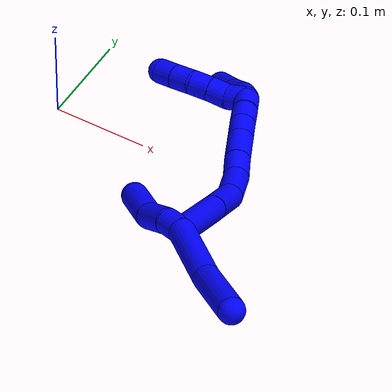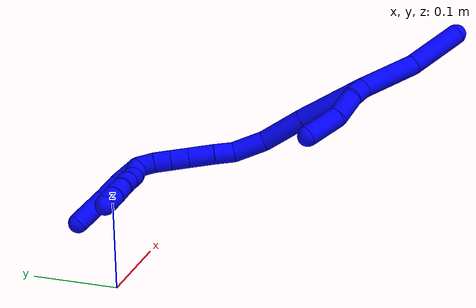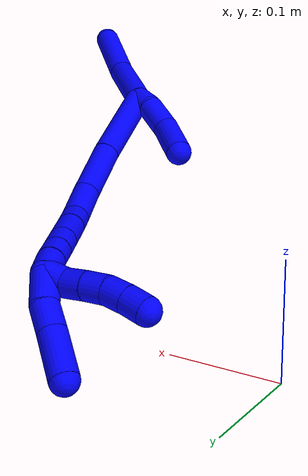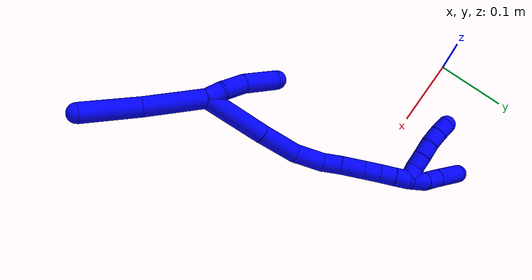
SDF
<sdf version="1.7">
 <world name="default">
  <model name="1">
   <static>0</static>
   <link name="1">
    <collision name="collision-cylinder-e_1_2_8">
     <pose>0.005627 0.000156 0.038166 -0.004094 0.146383 -0.0003</pose>
     <geometry><cylinder><radius>0.0125</radius><length>0.077158</length></cylinder></geometry>
     <surface>
      <friction><ode><mu>1.16</mu><mu2>1.16</mu2><slip1>0</slip1><slip2>0</slip2></ode></friction>
      <contact><ode><kp>1e+06</kp><kd>1</kd><max_vel>0</max_vel><min_depth>0.001</min_depth></ode></contact>
     </surface>
    </collision>
    <visual name="visual-cylinder-e_1_2_8">
     <pose>0.005627 0.000156 0.038166 -0.004094 0.146383 -0.0003</pose>
     <geometry><cylinder><radius>0.0125</radius><length>0.077158</length></cylinder></geometry>
     <material><ambient>0 0 1 1</ambient></material>
    </visual>
    <collision name="collision-cylinder-e_2_8_6">
     <pose>0.009991 0.000725 0.112729 -0.011325 -0.034686 0.000196</pose>
     <geometry><cylinder><radius>0.0125</radius><length>0.072842</length></cylinder></geometry>
     <surface>
      <friction><ode><mu>1.16</mu><mu2>1.16</mu2><slip1>0</slip1><slip2>0</slip2></ode></friction>
      <contact><ode><kp>1e+06</kp><kd>1</kd><max_vel>0</max_vel><min_depth>0.001</min_depth></ode></contact>
     </surface>
    </collision>
    <visual name="visual-cylinder-e_2_8_6">
     <pose>0.009991 0.000725 0.112729 -0.011325 -0.034686 0.000196</pose>
     <geometry><cylinder><radius>0.0125</radius><length>0.072842</length></cylinder></geometry>
     <material><ambient>0 0 1 1</ambient></material>
    </visual>
    <collision name="collision-cylinder-e_1_2_9">
     <pose>-0.000781 -0.00358 -0.010108 2.80125 -0.072737 -0.41732</pose>
     <geometry><cylinder><radius>0.0125</radius><length>0.021504</length></cylinder></geometry>
     <surface>
      <friction><ode><mu>1.16</mu><mu2>1.16</mu2><slip1>0</slip1><slip2>0</slip2></ode></friction>
      <contact><ode><kp>1e+06</kp><kd>1</kd><max_vel>0</max_vel><min_depth>0.001</min_depth></ode></contact>
     </surface>
    </collision>
    <visual name="visual-cylinder-e_1_2_9">
     <pose>-0.000781 -0.00358 -0.010108 2.80125 -0.072737 -0.41732</pose>
     <geometry><cylinder><radius>0.0125</radius><length>0.021504</length></cylinder></geometry>
     <material><ambient>0 0 1 1</ambient></material>
    </visual>
    <collision name="collision-cylinder-e_2_9_10">
     <pose>0.001791 -0.011644 -0.035905 2.86312 0.202725 1.25563</pose>
     <geometry><cylinder><radius>0.0125</radius><length>0.033315</length></cylinder></geometry>
     <surface>
      <friction><ode><mu>1.16</mu><mu2>1.16</mu2><slip1>0</slip1><slip2>0</slip2></ode></friction>
      <contact><ode><kp>1e+06</kp><kd>1</kd><max_vel>0</max_vel><min_depth>0.001</min_depth></ode></contact>
     </surface>
    </collision>
    <visual name="visual-cylinder-e_2_9_10">
     <pose>0.001791 -0.011644 -0.035905 2.86312 0.202725 1.25563</pose>
     <geometry><cylinder><radius>0.0125</radius><length>0.033315</length></cylinder></geometry>
     <material><ambient>0 0 1 1</ambient></material>
    </visual>
    <collision name="collision-cylinder-e_3_10_5">
     <pose>0.004799 -0.016719 -0.074173 3.1155 -0.015329 -1.06217</pose>
     <geometry><cylinder><radius>0.0125</radius><length>0.045181</length></cylinder></geometry>
     <surface>
      <friction><ode><mu>1.16</mu><mu2>1.16</mu2><slip1>0</slip1><slip2>0</slip2></ode></friction>
      <contact><ode><kp>1e+06</kp><kd>1</kd><max_vel>0</max_vel><min_depth>0.001</min_depth></ode></contact>
     </surface>
    </collision>
    <visual name="visual-cylinder-e_3_10_5">
     <pose>0.004799 -0.016719 -0.074173 3.1155 -0.015329 -1.06217</pose>
     <geometry><cylinder><radius>0.0125</radius><length>0.045181</length></cylinder></geometry>
     <material><ambient>0 0 1 1</ambient></material>
    </visual>
    <collision name="collision-cylinder-e_1_2_11">
     <pose>0.008466 0.024117 -0.033614 -2.51924 0.201858 -0.610099</pose>
     <geometry><cylinder><radius>0.0125</radius><length>0.084456</length></cylinder></geometry>
     <surface>
      <friction><ode><mu>1.16</mu><mu2>1.16</mu2><slip1>0</slip1><slip2>0</slip2></ode></friction>
      <contact><ode><kp>1e+06</kp><kd>1</kd><max_vel>0</max_vel><min_depth>0.001</min_depth></ode></contact>
     </surface>
    </collision>
    <visual name="visual-cylinder-e_1_2_11">
     <pose>0.008466 0.024117 -0.033614 -2.51924 0.201858 -0.610099</pose>
     <geometry><cylinder><radius>0.0125</radius><length>0.084456</length></cylinder></geometry>
     <material><ambient>0 0 1 1</ambient></material>
    </visual>
    <collision name="collision-cylinder-e_2_11_12">
     <pose>0.023219 0.062737 -0.089914 -2.5728 0.229369 -0.750735</pose>
     <geometry><cylinder><radius>0.0125</radius><length>0.055299</length></cylinder></geometry>
     <surface>
      <friction><ode><mu>1.16</mu><mu2>1.16</mu2><slip1>0</slip1><slip2>0</slip2></ode></friction>
      <contact><ode><kp>1e+06</kp><kd>1</kd><max_vel>0</max_vel><min_depth>0.001</min_depth></ode></contact>
     </surface>
    </collision>
    <visual name="visual-cylinder-e_2_11_12">
     <pose>0.023219 0.062737 -0.089914 -2.5728 0.229369 -0.750735</pose>
     <geometry><cylinder><radius>0.0125</radius><length>0.055299</length></cylinder></geometry>
     <material><ambient>0 0 1 1</ambient></material>
    </visual>
    <collision name="collision-cylinder-e_3_12_13">
     <pose>0.029177 0.085953 -0.130864 -2.69642 -0.016238 0.071714</pose>
     <geometry><cylinder><radius>0.0125</radius><length>0.040478</length></cylinder></geometry>
     <surface>
      <friction><ode><mu>1.16</mu><mu2>1.16</mu2><slip1>0</slip1><slip2>0</slip2></ode></friction>
      <contact><ode><kp>1e+06</kp><kd>1</kd><max_vel>0</max_vel><min_depth>0.001</min_depth></ode></contact>
     </surface>
    </collision>
    <visual name="visual-cylinder-e_3_12_13">
     <pose>0.029177 0.085953 -0.130864 -2.69642 -0.016238 0.071714</pose>
     <geometry><cylinder><radius>0.0125</radius><length>0.040478</length></cylinder></geometry>
     <material><ambient>0 0 1 1</ambient></material>
    </visual>
    <collision name="collision-cylinder-e_4_13_14">
     <pose>0.024793 0.098941 -0.160285 -2.77576 -0.327204 1.45717</pose>
     <geometry><cylinder><radius>0.0125</radius><length>0.025233</length></cylinder></geometry>
     <surface>
      <friction><ode><mu>1.16</mu><mu2>1.16</mu2><slip1>0</slip1><slip2>0</slip2></ode></friction>
      <contact><ode><kp>1e+06</kp><kd>1</kd><max_vel>0</max_vel><min_depth>0.001</min_depth></ode></contact>
     </surface>
    </collision>
    <visual name="visual-cylinder-e_4_13_14">
     <pose>0.024793 0.098941 -0.160285 -2.77576 -0.327204 1.45717</pose>
     <geometry><cylinder><radius>0.0125</radius><length>0.025233</length></cylinder></geometry>
     <material><ambient>0 0 1 1</ambient></material>
    </visual>
    <collision name="collision-cylinder-e_5_14_15">
     <pose>0.016494 0.109165 -0.185287 -2.73567 -0.27454 1.18234</pose>
     <geometry><cylinder><radius>0.0125</radius><length>0.031312</length></cylinder></geometry>
     <surface>
      <friction><ode><mu>1.16</mu><mu2>1.16</mu2><slip1>0</slip1><slip2>0</slip2></ode></friction>
      <contact><ode><kp>1e+06</kp><kd>1</kd><max_vel>0</max_vel><min_depth>0.001</min_depth></ode></contact>
     </surface>
    </collision>
    <visual name="visual-cylinder-e_5_14_15">
     <pose>0.016494 0.109165 -0.185287 -2.73567 -0.27454 1.18234</pose>
     <geometry><cylinder><radius>0.0125</radius><length>0.031312</length></cylinder></geometry>
     <material><ambient>0 0 1 1</ambient></material>
    </visual>
    <collision name="collision-cylinder-e_6_15_16">
     <pose>0.009249 0.119302 -0.208884 -2.73613 -0.275505 1.1867</pose>
     <geometry><cylinder><radius>0.0125</radius><length>0.022058</length></cylinder></geometry>
     <surface>
      <friction><ode><mu>1.16</mu><mu2>1.16</mu2><slip1>0</slip1><slip2>0</slip2></ode></friction>
      <contact><ode><kp>1e+06</kp><kd>1</kd><max_vel>0</max_vel><min_depth>0.001</min_depth></ode></contact>
     </surface>
    </collision>
    <visual name="visual-cylinder-e_6_15_16">
     <pose>0.009249 0.119302 -0.208884 -2.73613 -0.275505 1.1867</pose>
     <geometry><cylinder><radius>0.0125</radius><length>0.022058</length></cylinder></geometry>
     <material><ambient>0 0 1 1</ambient></material>
    </visual>
    <collision name="collision-cylinder-e_7_16_17">
     <pose>0.003598 0.12755 -0.227621 -2.71705 -0.262666 1.0997</pose>
     <geometry><cylinder><radius>0.0125</radius><length>0.020421</length></cylinder></geometry>
     <surface>
      <friction><ode><mu>1.16</mu><mu2>1.16</mu2><slip1>0</slip1><slip2>0</slip2></ode></friction>
      <contact><ode><kp>1e+06</kp><kd>1</kd><max_vel>0</max_vel><min_depth>0.001</min_depth></ode></contact>
     </surface>
    </collision>
    <visual name="visual-cylinder-e_7_16_17">
     <pose>0.003598 0.12755 -0.227621 -2.71705 -0.262666 1.0997</pose>
     <geometry><cylinder><radius>0.0125</radius><length>0.020421</length></cylinder></geometry>
     <material><ambient>0 0 1 1</ambient></material>
    </visual>
    <collision name="collision-cylinder-e_8_17_1">
     <pose>-0.000656 0.135447 -0.246108 -2.75789 -0.155151 0.761321</pose>
     <geometry><cylinder><radius>0.0125</radius><length>0.020743</length></cylinder></geometry>
     <surface>
      <friction><ode><mu>1.16</mu><mu2>1.16</mu2><slip1>0</slip1><slip2>0</slip2></ode></friction>
      <contact><ode><kp>1e+06</kp><kd>1</kd><max_vel>0</max_vel><min_depth>0.001</min_depth></ode></contact>
     </surface>
    </collision>
    <visual name="visual-cylinder-e_8_17_1">
     <pose>-0.000656 0.135447 -0.246108 -2.75789 -0.155151 0.761321</pose>
     <geometry><cylinder><radius>0.0125</radius><length>0.020743</length></cylinder></geometry>
     <material><ambient>0 0 1 1</ambient></material>
    </visual>
    <collision name="collision-cylinder-e_1_1_18">
     <pose>0.00142 0.141969 -0.270213 -2.95974 0.242848 -1.85817</pose>
     <geometry><cylinder><radius>0.0125</radius><length>0.030594</length></cylinder></geometry>
     <surface>
      <friction><ode><mu>1.16</mu><mu2>1.16</mu2><slip1>0</slip1><slip2>0</slip2></ode></friction>
      <contact><ode><kp>1e+06</kp><kd>1</kd><max_vel>0</max_vel><min_depth>0.001</min_depth></ode></contact>
     </surface>
    </collision>
    <visual name="visual-cylinder-e_1_1_18">
     <pose>0.00142 0.141969 -0.270213 -2.95974 0.242848 -1.85817</pose>
     <geometry><cylinder><radius>0.0125</radius><length>0.030594</length></cylinder></geometry>
     <material><ambient>0 0 1 1</ambient></material>
    </visual>
    <collision name="collision-cylinder-e_2_18_19">
     <pose>0.008158 0.143652 -0.297439 3.06239 0.23708 2.4993</pose>
     <geometry><cylinder><radius>0.0125</radius><length>0.026054</length></cylinder></geometry>
     <surface>
      <friction><ode><mu>1.16</mu><mu2>1.16</mu2><slip1>0</slip1><slip2>0</slip2></ode></friction>
      <contact><ode><kp>1e+06</kp><kd>1</kd><max_vel>0</max_vel><min_depth>0.001</min_depth></ode></contact>
     </surface>
    </collision>
    <visual name="visual-cylinder-e_2_18_19">
     <pose>0.008158 0.143652 -0.297439 3.06239 0.23708 2.4993</pose>
     <geometry><cylinder><radius>0.0125</radius><length>0.026054</length></cylinder></geometry>
     <material><ambient>0 0 1 1</ambient></material>
    </visual>
    <collision name="collision-cylinder-e_3_19_4">
     <pose>0.015405 0.141645 -0.331306 3.09431 0.194404 2.66575</pose>
     <geometry><cylinder><radius>0.0125</radius><length>0.043352</length></cylinder></geometry>
     <surface>
      <friction><ode><mu>1.16</mu><mu2>1.16</mu2><slip1>0</slip1><slip2>0</slip2></ode></friction>
      <contact><ode><kp>1e+06</kp><kd>1</kd><max_vel>0</max_vel><min_depth>0.001</min_depth></ode></contact>
     </surface>
    </collision>
    <visual name="visual-cylinder-e_3_19_4">
     <pose>0.015405 0.141645 -0.331306 3.09431 0.194404 2.66575</pose>
     <geometry><cylinder><radius>0.0125</radius><length>0.043352</length></cylinder></geometry>
     <material><ambient>0 0 1 1</ambient></material>
    </visual>
    <collision name="collision-cylinder-e_1_1_20">
     <pose>-0.001922 0.131986 -0.262439 2.32308 0.033655 0.077559</pose>
     <geometry><cylinder><radius>0.0125</radius><length>0.02</length></cylinder></geometry>
     <surface>
      <friction><ode><mu>1.16</mu><mu2>1.16</mu2><slip1>0</slip1><slip2>0</slip2></ode></friction>
      <contact><ode><kp>1e+06</kp><kd>1</kd><max_vel>0</max_vel><min_depth>0.001</min_depth></ode></contact>
     </surface>
    </collision>
    <visual name="visual-cylinder-e_1_1_20">
     <pose>-0.001922 0.131986 -0.262439 2.32308 0.033655 0.077559</pose>
     <geometry><cylinder><radius>0.0125</radius><length>0.02</length></cylinder></geometry>
     <material><ambient>0 0 1 1</ambient></material>
    </visual>
    <collision name="collision-cylinder-e_2_20_21">
     <pose>-0.004519 0.117653 -0.275741 2.31452 -0.297687 -0.658527</pose>
     <geometry><cylinder><radius>0.0125</radius><length>0.02</length></cylinder></geometry>
     <surface>
      <friction><ode><mu>1.16</mu><mu2>1.16</mu2><slip1>0</slip1><slip2>0</slip2></ode></friction>
      <contact><ode><kp>1e+06</kp><kd>1</kd><max_vel>0</max_vel><min_depth>0.001</min_depth></ode></contact>
     </surface>
    </collision>
    <visual name="visual-cylinder-e_2_20_21">
     <pose>-0.004519 0.117653 -0.275741 2.31452 -0.297687 -0.658527</pose>
     <geometry><cylinder><radius>0.0125</radius><length>0.02</length></cylinder></geometry>
     <material><ambient>0 0 1 1</ambient></material>
    </visual>
    <collision name="collision-cylinder-e_3_21_22">
     <pose>-0.009743 0.103375 -0.288717 2.30256 -0.231166 -0.509338</pose>
     <geometry><cylinder><radius>0.0125</radius><length>0.02</length></cylinder></geometry>
     <surface>
      <friction><ode><mu>1.16</mu><mu2>1.16</mu2><slip1>0</slip1><slip2>0</slip2></ode></friction>
      <contact><ode><kp>1e+06</kp><kd>1</kd><max_vel>0</max_vel><min_depth>0.001</min_depth></ode></contact>
     </surface>
    </collision>
    <visual name="visual-cylinder-e_3_21_22">
     <pose>-0.009743 0.103375 -0.288717 2.30256 -0.231166 -0.509338</pose>
     <geometry><cylinder><radius>0.0125</radius><length>0.02</length></cylinder></geometry>
     <material><ambient>0 0 1 1</ambient></material>
    </visual>
    <collision name="collision-cylinder-e_4_22_23">
     <pose>-0.013072 0.089998 -0.30305 2.47683 -0.103997 -0.299295</pose>
     <geometry><cylinder><radius>0.0125</radius><length>0.02</length></cylinder></geometry>
     <surface>
      <friction><ode><mu>1.16</mu><mu2>1.16</mu2><slip1>0</slip1><slip2>0</slip2></ode></friction>
      <contact><ode><kp>1e+06</kp><kd>1</kd><max_vel>0</max_vel><min_depth>0.001</min_depth></ode></contact>
     </surface>
    </collision>
    <visual name="visual-cylinder-e_4_22_23">
     <pose>-0.013072 0.089998 -0.30305 2.47683 -0.103997 -0.299295</pose>
     <geometry><cylinder><radius>0.0125</radius><length>0.02</length></cylinder></geometry>
     <material><ambient>0 0 1 1</ambient></material>
    </visual>
    <collision name="collision-cylinder-e_5_23_3">
     <pose>-0.014924 0.078377 -0.319199 2.5588 -0.081413 -0.269934</pose>
     <geometry><cylinder><radius>0.0125</radius><length>0.02</length></cylinder></geometry>
     <surface>
      <friction><ode><mu>1.16</mu><mu2>1.16</mu2><slip1>0</slip1><slip2>0</slip2></ode></friction>
      <contact><ode><kp>1e+06</kp><kd>1</kd><max_vel>0</max_vel><min_depth>0.001</min_depth></ode></contact>
     </surface>
    </collision>
    <visual name="visual-cylinder-e_5_23_3">
     <pose>-0.014924 0.078377 -0.319199 2.5588 -0.081413 -0.269934</pose>
     <geometry><cylinder><radius>0.0125</radius><length>0.02</length></cylinder></geometry>
     <material><ambient>0 0 1 1</ambient></material>
    </visual>
    <collision name="collision-sphere-3">
     <pose>-0.015737 0.072892 -0.327521 0 -0 0</pose>
     <geometry><sphere><radius>0.0125</radius></sphere></geometry>
     <surface>
      <friction><ode><mu>1.16</mu><mu2>1.16</mu2><slip1>0</slip1><slip2>0</slip2></ode></friction>
      <contact><ode><kp>1e+06</kp><kd>1</kd><max_vel>0</max_vel><min_depth>0.001</min_depth></ode></contact>
     </surface>
    </collision>
    <visual name="visual-sphere-3">
     <pose>-0.015737 0.072892 -0.327521 0 -0 0</pose>
     <geometry><sphere><radius>0.0125</radius></sphere></geometry>
     <material><ambient>0 0 1 1</ambient></material>
    </visual>
    <collision name="collision-sphere-23">
     <pose>-0.01411 0.083862 -0.310878 0 -0 0</pose>
     <geometry><sphere><radius>0.0125</radius></sphere></geometry>
     <surface>
      <friction><ode><mu>1.16</mu><mu2>1.16</mu2><slip1>0</slip1><slip2>0</slip2></ode></friction>
      <contact><ode><kp>1e+06</kp><kd>1</kd><max_vel>0</max_vel><min_depth>0.001</min_depth></ode></contact>
     </surface>
    </collision>
    <visual name="visual-sphere-23">
     <pose>-0.01411 0.083862 -0.310878 0 -0 0</pose>
     <geometry><sphere><radius>0.0125</radius></sphere></geometry>
     <material><ambient>0 0 1 1</ambient></material>
    </visual>
    <collision name="collision-sphere-22">
     <pose>-0.012034 0.096133 -0.295222 0 -0 0</pose>
     <geometry><sphere><radius>0.0125</radius></sphere></geometry>
     <surface>
      <friction><ode><mu>1.16</mu><mu2>1.16</mu2><slip1>0</slip1><slip2>0</slip2></ode></friction>
      <contact><ode><kp>1e+06</kp><kd>1</kd><max_vel>0</max_vel><min_depth>0.001</min_depth></ode></contact>
     </surface>
    </collision>
    <visual name="visual-sphere-22">
     <pose>-0.012034 0.096133 -0.295222 0 -0 0</pose>
     <geometry><sphere><radius>0.0125</radius></sphere></geometry>
     <material><ambient>0 0 1 1</ambient></material>
    </visual>
    <collision name="collision-sphere-21">
     <pose>-0.007452 0.110617 -0.282213 0 -0 0</pose>
     <geometry><sphere><radius>0.0125</radius></sphere></geometry>
     <surface>
      <friction><ode><mu>1.16</mu><mu2>1.16</mu2><slip1>0</slip1><slip2>0</slip2></ode></friction>
      <contact><ode><kp>1e+06</kp><kd>1</kd><max_vel>0</max_vel><min_depth>0.001</min_depth></ode></contact>
     </surface>
    </collision>
    <visual name="visual-sphere-21">
     <pose>-0.007452 0.110617 -0.282213 0 -0 0</pose>
     <geometry><sphere><radius>0.0125</radius></sphere></geometry>
     <material><ambient>0 0 1 1</ambient></material>
    </visual>
    <collision name="collision-sphere-20">
     <pose>-0.001586 0.124689 -0.269268 0 -0 0</pose>
     <geometry><sphere><radius>0.0125</radius></sphere></geometry>
     <surface>
      <friction><ode><mu>1.16</mu><mu2>1.16</mu2><slip1>0</slip1><slip2>0</slip2></ode></friction>
      <contact><ode><kp>1e+06</kp><kd>1</kd><max_vel>0</max_vel><min_depth>0.001</min_depth></ode></contact>
     </surface>
    </collision>
    <visual name="visual-sphere-20">
     <pose>-0.001586 0.124689 -0.269268 0 -0 0</pose>
     <geometry><sphere><radius>0.0125</radius></sphere></geometry>
     <material><ambient>0 0 1 1</ambient></material>
    </visual>
    <collision name="collision-sphere-4">
     <pose>0.019592 0.14064 -0.35255 0 -0 0</pose>
     <geometry><sphere><radius>0.0125</radius></sphere></geometry>
     <surface>
      <friction><ode><mu>1.16</mu><mu2>1.16</mu2><slip1>0</slip1><slip2>0</slip2></ode></friction>
      <contact><ode><kp>1e+06</kp><kd>1</kd><max_vel>0</max_vel><min_depth>0.001</min_depth></ode></contact>
     </surface>
    </collision>
    <visual name="visual-sphere-4">
     <pose>0.019592 0.14064 -0.35255 0 -0 0</pose>
     <geometry><sphere><radius>0.0125</radius></sphere></geometry>
     <material><ambient>0 0 1 1</ambient></material>
    </visual>
    <collision name="collision-sphere-5">
     <pose>0.004452 -0.017308 -0.096753 0 -0 0</pose>
     <geometry><sphere><radius>0.0125</radius></sphere></geometry>
     <surface>
      <friction><ode><mu>1.16</mu><mu2>1.16</mu2><slip1>0</slip1><slip2>0</slip2></ode></friction>
      <contact><ode><kp>1e+06</kp><kd>1</kd><max_vel>0</max_vel><min_depth>0.001</min_depth></ode></contact>
     </surface>
    </collision>
    <visual name="visual-sphere-5">
     <pose>0.004452 -0.017308 -0.096753 0 -0 0</pose>
     <geometry><sphere><radius>0.0125</radius></sphere></geometry>
     <material><ambient>0 0 1 1</ambient></material>
    </visual>
    <collision name="collision-sphere-10">
     <pose>0.005145 -0.01613 -0.051593 0 -0 0</pose>
     <geometry><sphere><radius>0.0125</radius></sphere></geometry>
     <surface>
      <friction><ode><mu>1.16</mu><mu2>1.16</mu2><slip1>0</slip1><slip2>0</slip2></ode></friction>
      <contact><ode><kp>1e+06</kp><kd>1</kd><max_vel>0</max_vel><min_depth>0.001</min_depth></ode></contact>
     </surface>
    </collision>
    <visual name="visual-sphere-10">
     <pose>0.005145 -0.01613 -0.051593 0 -0 0</pose>
     <geometry><sphere><radius>0.0125</radius></sphere></geometry>
     <material><ambient>0 0 1 1</ambient></material>
    </visual>
    <collision name="collision-sphere-6">
     <pose>0.008728 0.001137 0.149126 0 -0 0</pose>
     <geometry><sphere><radius>0.0125</radius></sphere></geometry>
     <surface>
      <friction><ode><mu>1.16</mu><mu2>1.16</mu2><slip1>0</slip1><slip2>0</slip2></ode></friction>
      <contact><ode><kp>1e+06</kp><kd>1</kd><max_vel>0</max_vel><min_depth>0.001</min_depth></ode></contact>
     </surface>
    </collision>
    <visual name="visual-sphere-6">
     <pose>0.008728 0.001137 0.149126 0 -0 0</pose>
     <geometry><sphere><radius>0.0125</radius></sphere></geometry>
     <material><ambient>0 0 1 1</ambient></material>
    </visual>
    <collision name="collision-sphere-9">
     <pose>-0.001563 -0.007159 -0.020217 0 -0 0</pose>
     <geometry><sphere><radius>0.0125</radius></sphere></geometry>
     <surface>
      <friction><ode><mu>1.16</mu><mu2>1.16</mu2><slip1>0</slip1><slip2>0</slip2></ode></friction>
      <contact><ode><kp>1e+06</kp><kd>1</kd><max_vel>0</max_vel><min_depth>0.001</min_depth></ode></contact>
     </surface>
    </collision>
    <visual name="visual-sphere-9">
     <pose>-0.001563 -0.007159 -0.020217 0 -0 0</pose>
     <geometry><sphere><radius>0.0125</radius></sphere></geometry>
     <material><ambient>0 0 1 1</ambient></material>
    </visual>
    <collision name="collision-sphere-2">
     <geometry><sphere><radius>0.0125</radius></sphere></geometry>
     <surface>
      <friction><ode><mu>1.16</mu><mu2>1.16</mu2><slip1>0</slip1><slip2>0</slip2></ode></friction>
      <contact><ode><kp>1e+06</kp><kd>1</kd><max_vel>0</max_vel><min_depth>0.001</min_depth></ode></contact>
     </surface>
    </collision>
    <visual name="visual-sphere-2">
     <geometry><sphere><radius>0.0125</radius></sphere></geometry>
     <material><ambient>0 0 1 1</ambient></material>
    </visual>
    <collision name="collision-sphere-19">
     <pose>0.011217 0.14265 -0.310062 0 -0 0</pose>
     <geometry><sphere><radius>0.0125</radius></sphere></geometry>
     <surface>
      <friction><ode><mu>1.16</mu><mu2>1.16</mu2><slip1>0</slip1><slip2>0</slip2></ode></friction>
      <contact><ode><kp>1e+06</kp><kd>1</kd><max_vel>0</max_vel><min_depth>0.001</min_depth></ode></contact>
     </surface>
    </collision>
    <visual name="visual-sphere-19">
     <pose>0.011217 0.14265 -0.310062 0 -0 0</pose>
     <geometry><sphere><radius>0.0125</radius></sphere></geometry>
     <material><ambient>0 0 1 1</ambient></material>
    </visual>
    <collision name="collision-sphere-8">
     <pose>0.011254 0.000312 0.076332 0 -0 0</pose>
     <geometry><sphere><radius>0.0125</radius></sphere></geometry>
     <surface>
      <friction><ode><mu>1.16</mu><mu2>1.16</mu2><slip1>0</slip1><slip2>0</slip2></ode></friction>
      <contact><ode><kp>1e+06</kp><kd>1</kd><max_vel>0</max_vel><min_depth>0.001</min_depth></ode></contact>
     </surface>
    </collision>
    <visual name="visual-sphere-8">
     <pose>0.011254 0.000312 0.076332 0 -0 0</pose>
     <geometry><sphere><radius>0.0125</radius></sphere></geometry>
     <material><ambient>0 0 1 1</ambient></material>
    </visual>
    <collision name="collision-sphere-11">
     <pose>0.016933 0.048234 -0.067228 0 -0 0</pose>
     <geometry><sphere><radius>0.0125</radius></sphere></geometry>
     <surface>
      <friction><ode><mu>1.16</mu><mu2>1.16</mu2><slip1>0</slip1><slip2>0</slip2></ode></friction>
      <contact><ode><kp>1e+06</kp><kd>1</kd><max_vel>0</max_vel><min_depth>0.001</min_depth></ode></contact>
     </surface>
    </collision>
    <visual name="visual-sphere-11">
     <pose>0.016933 0.048234 -0.067228 0 -0 0</pose>
     <geometry><sphere><radius>0.0125</radius></sphere></geometry>
     <material><ambient>0 0 1 1</ambient></material>
    </visual>
    <collision name="collision-sphere-12">
     <pose>0.029505 0.077239 -0.1126 0 -0 0</pose>
     <geometry><sphere><radius>0.0125</radius></sphere></geometry>
     <surface>
      <friction><ode><mu>1.16</mu><mu2>1.16</mu2><slip1>0</slip1><slip2>0</slip2></ode></friction>
      <contact><ode><kp>1e+06</kp><kd>1</kd><max_vel>0</max_vel><min_depth>0.001</min_depth></ode></contact>
     </surface>
    </collision>
    <visual name="visual-sphere-12">
     <pose>0.029505 0.077239 -0.1126 0 -0 0</pose>
     <geometry><sphere><radius>0.0125</radius></sphere></geometry>
     <material><ambient>0 0 1 1</ambient></material>
    </visual>
    <collision name="collision-sphere-13">
     <pose>0.028848 0.094667 -0.149128 0 -0 0</pose>
     <geometry><sphere><radius>0.0125</radius></sphere></geometry>
     <surface>
      <friction><ode><mu>1.16</mu><mu2>1.16</mu2><slip1>0</slip1><slip2>0</slip2></ode></friction>
      <contact><ode><kp>1e+06</kp><kd>1</kd><max_vel>0</max_vel><min_depth>0.001</min_depth></ode></contact>
     </surface>
    </collision>
    <visual name="visual-sphere-13">
     <pose>0.028848 0.094667 -0.149128 0 -0 0</pose>
     <geometry><sphere><radius>0.0125</radius></sphere></geometry>
     <material><ambient>0 0 1 1</ambient></material>
    </visual>
    <collision name="collision-sphere-14">
     <pose>0.020738 0.103215 -0.171441 0 -0 0</pose>
     <geometry><sphere><radius>0.0125</radius></sphere></geometry>
     <surface>
      <friction><ode><mu>1.16</mu><mu2>1.16</mu2><slip1>0</slip1><slip2>0</slip2></ode></friction>
      <contact><ode><kp>1e+06</kp><kd>1</kd><max_vel>0</max_vel><min_depth>0.001</min_depth></ode></contact>
     </surface>
    </collision>
    <visual name="visual-sphere-14">
     <pose>0.020738 0.103215 -0.171441 0 -0 0</pose>
     <geometry><sphere><radius>0.0125</radius></sphere></geometry>
     <material><ambient>0 0 1 1</ambient></material>
    </visual>
    <collision name="collision-sphere-15">
     <pose>0.01225 0.115116 -0.199132 0 -0 0</pose>
     <geometry><sphere><radius>0.0125</radius></sphere></geometry>
     <surface>
      <friction><ode><mu>1.16</mu><mu2>1.16</mu2><slip1>0</slip1><slip2>0</slip2></ode></friction>
      <contact><ode><kp>1e+06</kp><kd>1</kd><max_vel>0</max_vel><min_depth>0.001</min_depth></ode></contact>
     </surface>
    </collision>
    <visual name="visual-sphere-15">
     <pose>0.01225 0.115116 -0.199132 0 -0 0</pose>
     <geometry><sphere><radius>0.0125</radius></sphere></geometry>
     <material><ambient>0 0 1 1</ambient></material>
    </visual>
    <collision name="collision-sphere-16">
     <pose>0.006249 0.123488 -0.218636 0 -0 0</pose>
     <geometry><sphere><radius>0.0125</radius></sphere></geometry>
     <surface>
      <friction><ode><mu>1.16</mu><mu2>1.16</mu2><slip1>0</slip1><slip2>0</slip2></ode></friction>
      <contact><ode><kp>1e+06</kp><kd>1</kd><max_vel>0</max_vel><min_depth>0.001</min_depth></ode></contact>
     </surface>
    </collision>
    <visual name="visual-sphere-16">
     <pose>0.006249 0.123488 -0.218636 0 -0 0</pose>
     <geometry><sphere><radius>0.0125</radius></sphere></geometry>
     <material><ambient>0 0 1 1</ambient></material>
    </visual>
    <collision name="collision-sphere-17">
     <pose>0.000947 0.131611 -0.236607 0 -0 0</pose>
     <geometry><sphere><radius>0.0125</radius></sphere></geometry>
     <surface>
      <friction><ode><mu>1.16</mu><mu2>1.16</mu2><slip1>0</slip1><slip2>0</slip2></ode></friction>
      <contact><ode><kp>1e+06</kp><kd>1</kd><max_vel>0</max_vel><min_depth>0.001</min_depth></ode></contact>
     </surface>
    </collision>
    <visual name="visual-sphere-17">
     <pose>0.000947 0.131611 -0.236607 0 -0 0</pose>
     <geometry><sphere><radius>0.0125</radius></sphere></geometry>
     <material><ambient>0 0 1 1</ambient></material>
    </visual>
    <collision name="collision-sphere-1">
     <pose>-0.002259 0.139283 -0.25561 0 -0 0</pose>
     <geometry><sphere><radius>0.0125</radius></sphere></geometry>
     <surface>
      <friction><ode><mu>1.16</mu><mu2>1.16</mu2><slip1>0</slip1><slip2>0</slip2></ode></friction>
      <contact><ode><kp>1e+06</kp><kd>1</kd><max_vel>0</max_vel><min_depth>0.001</min_depth></ode></contact>
     </surface>
    </collision>
    <visual name="visual-sphere-1">
     <pose>-0.002259 0.139283 -0.25561 0 -0 0</pose>
     <geometry><sphere><radius>0.0125</radius></sphere></geometry>
     <material><ambient>0 0 1 1</ambient></material>
    </visual>
    <collision name="collision-sphere-18">
     <pose>0.005098 0.144654 -0.284816 0 -0 0</pose>
     <geometry><sphere><radius>0.0125</radius></sphere></geometry>
     <surface>
      <friction><ode><mu>1.16</mu><mu2>1.16</mu2><slip1>0</slip1><slip2>0</slip2></ode></friction>
      <contact><ode><kp>1e+06</kp><kd>1</kd><max_vel>0</max_vel><min_depth>0.001</min_depth></ode></contact>
     </surface>
    </collision>
    <visual name="visual-sphere-18">
     <pose>0.005098 0.144654 -0.284816 0 -0 0</pose>
     <geometry><sphere><radius>0.0125</radius></sphere></geometry>
     <material><ambient>0 0 1 1</ambient></material>
    </visual>
    <inertial>
     <pose>0.008064 0.061927 -0.120381 0 -0 0</pose>
     <mass>0.75</mass>
     <inertia><ixx>0.000111</ixx><ixy>0</ixy><ixz>0</ixz><iyy>-6e-06</iyy><iyz>0</iyz><izz>-8.8e-05</izz></inertia>
    </inertial>
   </link>
   <pose>0.267872 -0.211396 0.16979 -0.125457 1.17928 -0.876311</pose>
  </model>
 </world>
</sdf>
